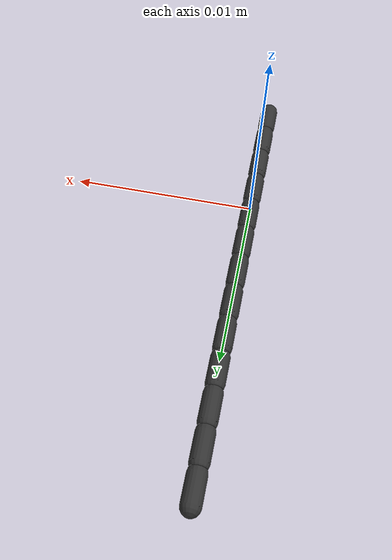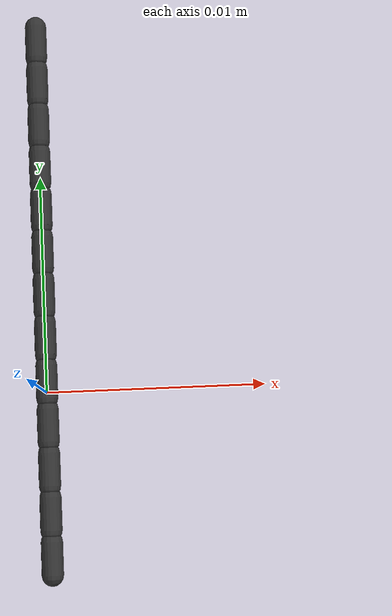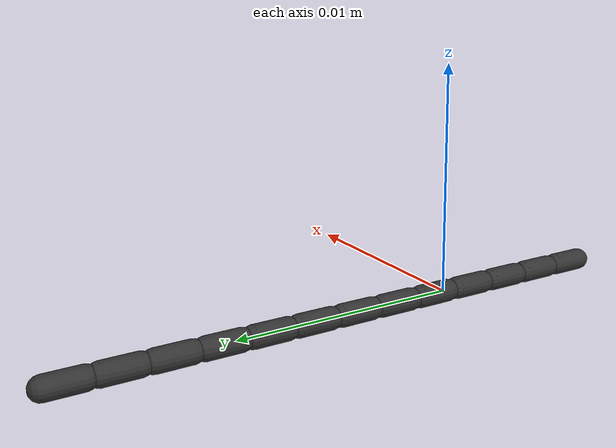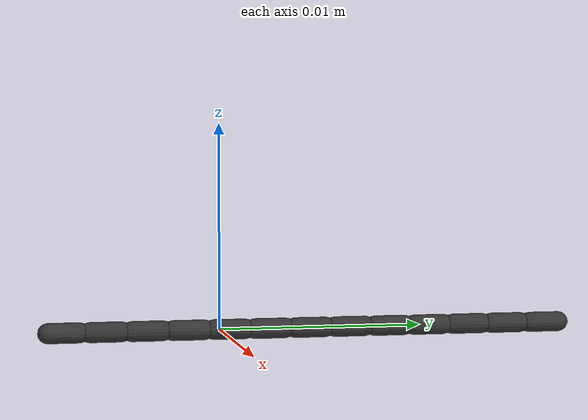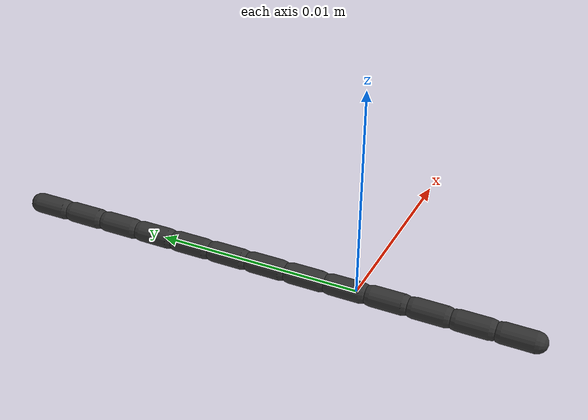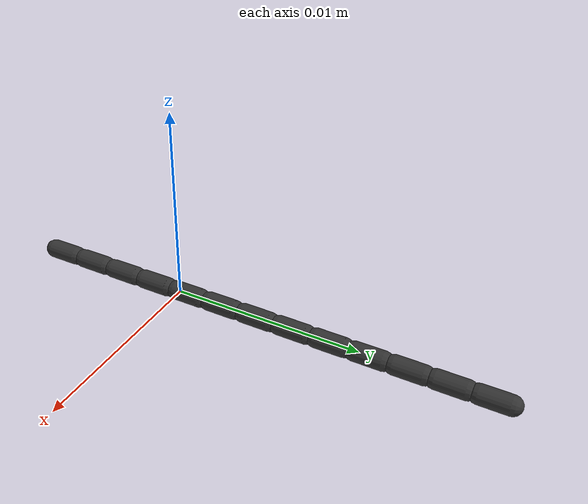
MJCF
<mujoco model="guidewire">
  <compiler autolimits="true" angle="radian"/>
  <default>
    <default class="/">
      <joint type="hinge" pos="0 0 -0.001" axis="0 0 1" stiffness="20" ref="0" springref="0" armature="0.050000000000000003"/>
      <geom type="capsule" condim="1" group="1" size="0.00050000000000000001 0.00075000000000000002" rgba="0.20000000000000001 0.20000000000000001 0.20000000000000001 1" friction="0.10000000000000001" density="672" fluidshape="ellipsoid"/>
      <site type="sphere" rgba="0.29999999999999999 0 0 0" size="0.00050000000000000001"/>
      <velocity ctrlrange="-1 1" forcerange="-1 1" kv="5"/>
    </default>
    <default class="tip/">
      <joint type="hinge" pos="0 0 -0.001" stiffness="1" springref="0.3490658503988659" armature="0.050000000000000003" damping="0.5"/>
      <geom type="capsule" condim="1" group="2" size="0.00050000000000000001 0.00075000000000000002" rgba="0.20000000000000001 0.20000000000000001 0.20000000000000001 1" friction="0.10000000000000001" density="672" fluidshape="ellipsoid"/>
    </default>
  </default>
  <worldbody>
    <body name="guidewire_body_0" pos="0 -0.0074999999999999997 0" euler="-1.5707963267948966 0 3.1415926535897931">
      <geom name="guidewire_geom_0" class="/"/>
      <joint name="slider" class="/" type="slide" stiffness="0" range="0 0.20000000000000001" damping="20"/>
      <joint name="rotator" class="/" type="hinge" stiffness="0" damping="20"/>
      <body name="guidewire_body_1" pos="0 0 0.002">
        <geom name="geom_1" class="/"/>
        <joint name="guidewire_J0_1" class="/" axis="1 0 0" stiffness="20"/>
        <joint name="guidewire_J1_1" class="/" axis="0 1 0" stiffness="20"/>
        <body name="guidewire_body_2" pos="0 0 0.002">
          <geom name="geom_2" class="/"/>
          <joint name="guidewire_J0_2" class="/" axis="1 0 0" stiffness="19.899999999999999"/>
          <joint name="guidewire_J1_2" class="/" axis="0 1 0" stiffness="19.899999999999999"/>
          <body name="guidewire_body_3" pos="0 0 0.002">
            <geom name="geom_3" class="/"/>
            <joint name="guidewire_J0_3" class="/" axis="1 0 0" stiffness="19.8005"/>
            <joint name="guidewire_J1_3" class="/" axis="0 1 0" stiffness="19.8005"/>
            <body name="guidewire_body_4" pos="0 0 0.002">
              <geom name="geom_4" class="/"/>
              <joint name="guidewire_J0_4" class="/" axis="1 0 0" stiffness="19.701497499999999"/>
              <joint name="guidewire_J1_4" class="/" axis="0 1 0" stiffness="19.701497499999999"/>
              <body name="guidewire_body_5" pos="0 0 0.002">
                <geom name="geom_5" class="/"/>
                <joint name="guidewire_J0_5" class="/" axis="1 0 0" stiffness="19.602990012499998"/>
                <joint name="guidewire_J1_5" class="/" axis="0 1 0" stiffness="19.602990012499998"/>
                <body name="guidewire_body_6" pos="0 0 0.002">
                  <geom name="geom_6" class="/"/>
                  <joint name="guidewire_J0_6" class="/" axis="1 0 0" stiffness="19.504975062437499"/>
                  <joint name="guidewire_J1_6" class="/" axis="0 1 0" stiffness="19.504975062437499"/>
                  <body name="guidewire_body_7" pos="0 0 0.002">
                    <geom name="geom_7" class="/"/>
                    <joint name="guidewire_J0_7" class="/" axis="1 0 0" stiffness="19.40745018712531"/>
                    <joint name="guidewire_J1_7" class="/" axis="0 1 0" stiffness="19.40745018712531"/>
                    <body name="guidewire_body_8" pos="0 0 0.002">
                      <geom name="geom_8" class="/"/>
                      <joint name="guidewire_J0_8" class="/" axis="1 0 0" stiffness="19.310412936189682"/>
                      <joint name="guidewire_J1_8" class="/" axis="0 1 0" stiffness="19.310412936189682"/>
                      <body name="guidewire_body_9" pos="0 0 0.002">
                        <geom name="geom_9" class="/"/>
                        <joint name="guidewire_J0_9" class="/" axis="1 0 0" stiffness="19.213860871508732"/>
                        <joint name="guidewire_J1_9" class="/" axis="0 1 0" stiffness="19.213860871508732"/>
                        <site name="tip_site" class="/" pos="0 0 0.002"/>
                        <body pos="0 0 0.002" name="tip/">
                          <body name="tip/tip_body_0" pos="0 0 0" euler="0 0 0">
                            <geom name="tip/tip_geom_0" class="tip/"/>
                            <joint name="tip/tip_J0_0" class="tip/" axis="0 0 1"/>
                            <joint name="tip/tip_J1_0" class="tip/" axis="0 1 0"/>
                            <body name="tip/tip_body_1" pos="0 0 0.002">
                              <geom name="tip/geom_1" class="tip/"/>
                              <joint name="tip/tip_J0_1" class="tip/" axis="1 0 0"/>
                              <joint name="tip/tip_J1_1" class="tip/" axis="0 1 0"/>
                              <body name="tip/tip_body_2" pos="0 0 0.002">
                                <geom name="tip/head" class="tip/"/>
                                <joint name="tip/tip_J0_2" class="tip/" axis="1 0 0"/>
                                <joint name="tip/tip_J1_2" class="tip/" axis="0 1 0"/>
                              </body>
                            </body>
                          </body>
                        </body>
                      </body>
                    </body>
                  </body>
                </body>
              </body>
            </body>
          </body>
        </body>
      </body>
    </body>
  </worldbody>
  <actuator>
    <velocity name="slider_actuator" class="/" joint="slider"/>
    <general name="rotator_actuator" class="/" joint="rotator" gaintype="fixed" biastype="none" dynprm="1 0 0" gainprm="20 0 0" biasprm="0 20 0"/>
  </actuator>
</mujoco>
